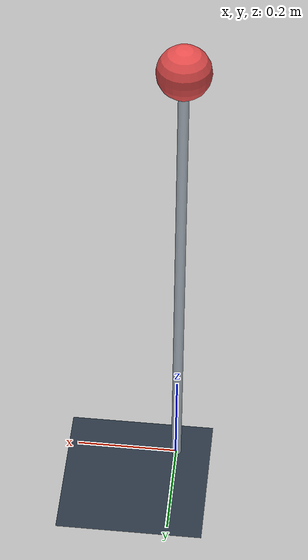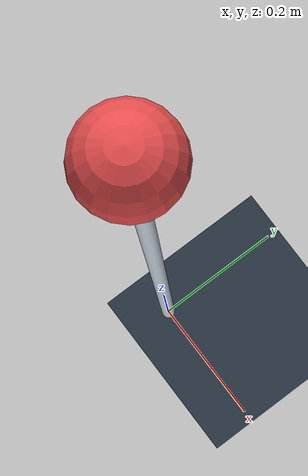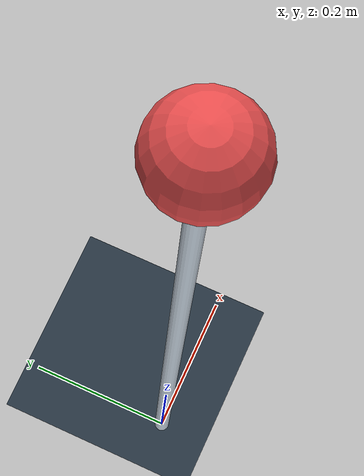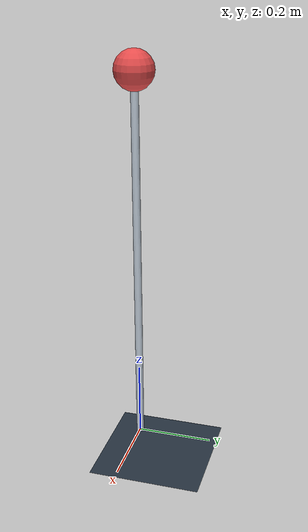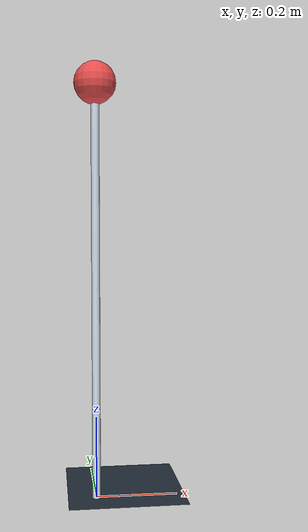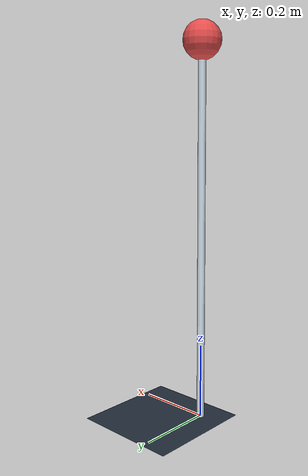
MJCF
<mujoco model="inverted_pendulum">
  <compiler angle="degree" coordinate="local"/>
  <option gravity="0 0 -9.81" integrator="RK4" timestep="0.002"/>
  <size njmax="100" nconmax="100"/>

  <default>
    <joint damping="0.05" armature="0.0" limited="true" range="-179 179"/>
    <geom  condim="3" friction="0.5 0.1 0.1" solref="0.002 1"/>
    <motor ctrlrange="-10 10"/>
  </default>

  <asset>
    <texture name="grid" type="2d" builtin="checker" width="512" height="512"
             rgb1="0.2 0.3 0.4" rgb2="0.1 0.1 0.1"/>
    <material name="mat_plane" texture="grid" texrepeat="8 8" reflectance="0.2"/>
    <material name="mat_rod" rgba="0.8 0.85 0.9 1"/>
    <material name="mat_mass" rgba="0.9 0.3 0.3 1"/>
  </asset>

  <worldbody>
    <!-- Ground -->
    <geom name="floor" type="plane" pos="0 0 0" size="10 10 1" material="mat_plane"/>

    <!-- Base -->
    <body name="base" pos="0 0 0">
      <joint name="hinge" type="hinge" pos="0 0 0" axis="0 1 0"/>

      <!-- Massless rod: purely visual (mass=0 so not counted in dynamics) -->
      <geom name="rod" type="capsule" fromto="0 0 0  0 0 1.0" size="0.01" mass="0" material="mat_rod"/>

      <!-- Point mass at tip -->
      <body name="mass_tip" pos="0 0 1.0">
        <geom name="mass_sphere" type="sphere" size="0.05" density="7800" material="mat_mass"/>
      </body>
    </body>
  </worldbody>

  <!-- Actuator -->
  <actuator>
    <motor name="hinge_motor" joint="hinge" gear="1"/>
  </actuator>

  <!-- Slight initial tilt -->
  <keyframe>
    <key name="slight_tilt" qpos="0.05"/>
  </keyframe>

  <!-- Sensors -->
  <sensor>
    <jointpos name="q" joint="hinge"/>
    <jointvel name="qd" joint="hinge"/>
  </sensor>
</mujoco>
